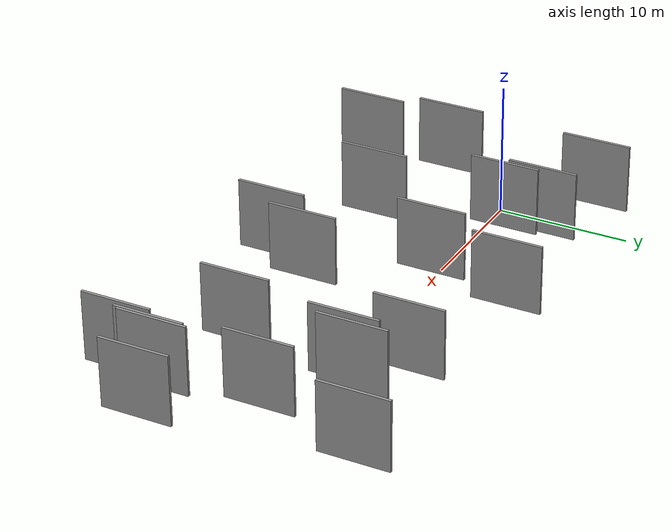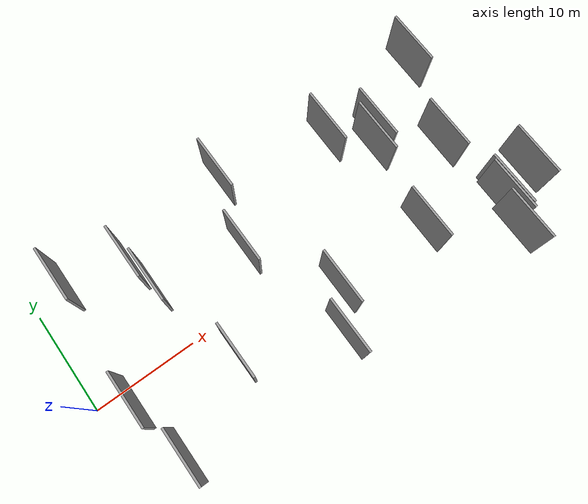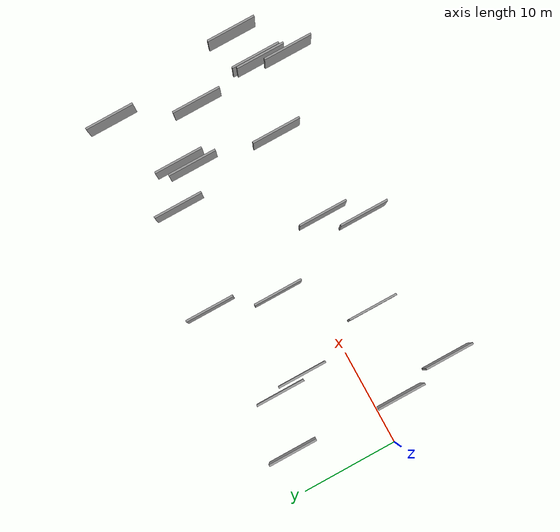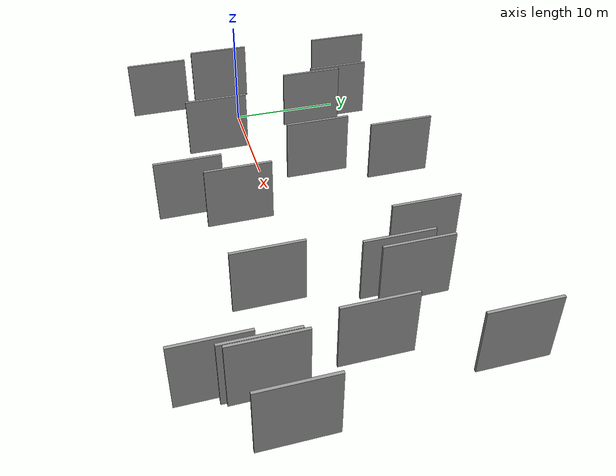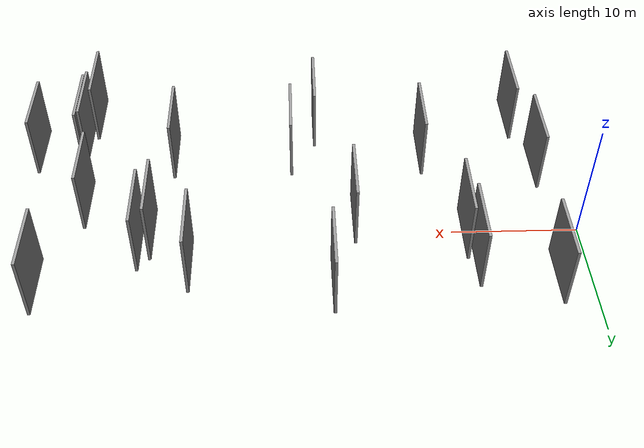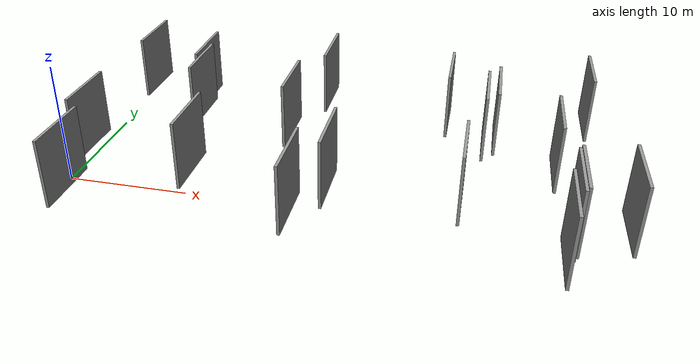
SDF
<sdf version="1.6">
 <world name="default">
  <scene>
   <sky><clouds><speed>12</speed></clouds></sky>
   <ambient>0.4 0.4 0.4 1</ambient>
   <background>0.7 0.7 0.7 1</background>
   <shadows>1</shadows>
  </scene>
  <gravity>0 0 -9.8066</gravity>
  <magnetic_field>6e-06 2.3e-05 -4.2e-05</magnetic_field>
  <physics default="0" name="default_physics" type="ode">
   <ode>
    <solver>
     <type>quick</type>
     <iters>10</iters>
     <sor>1.0</sor>
     <use_dynamic_moi_rescaling>0</use_dynamic_moi_rescaling>
    </solver>
    <constraints>
     <cfm>0</cfm>
     <erp>0.2</erp>
     <contact_max_correcting_vel>100</contact_max_correcting_vel>
     <contact_surface_layer>0.001</contact_surface_layer>
    </constraints>
   </ode>
   <max_step_size>0.004</max_step_size>
   <real_time_factor>1</real_time_factor>
   <real_time_update_rate>250</real_time_update_rate>
  </physics>
  <light name="sun" type="directional">
   <pose>0 0 10 0 0 0</pose>
   <diffuse>0.8 0.8 0.8 1</diffuse>
   <specular>0.2 0.2 0.2 1</specular>
   <attenuation>
    <range>1000</range>
    <constant>0.9</constant>
    <linear>0.01</linear>
    <quadratic>0.001</quadratic>
   </attenuation>
   <direction>-0.5 0.1 -0.9</direction>
  </light>
  <model name="grey_wall_1">
   <static>1</static>
   <pose>33.4687 5.3144 5.0 0.000000 0.000000 1.570796</pose>
   <link name="link">
    <pose>0 0 2.50 0 0 0</pose>
    <collision name="collision"><geometry><box><size>5.00 0.2 5.00</size></box></geometry></collision>
    <visual name="visual">
     <cast_shadows>0</cast_shadows>
     <geometry><box><size>5.00 0.2 5.00</size></box></geometry>
     <material>
      <script>
       <uri>model://grey_wall/materials/scripts</uri>
       <uri>model://grey_wall/materials/textures</uri>
       <name>vrc/grey_wall</name>
      </script>
     </material>
    </visual>
   </link>
  </model>
  <model name="grey_wall_2">
   <static>1</static>
   <pose>20.7372 -7.5459 5.0 0.000000 0.000000 1.570796</pose>
   <link name="link">
    <pose>0 0 2.50 0 0 0</pose>
    <collision name="collision"><geometry><box><size>5.00 0.2 5.00</size></box></geometry></collision>
    <visual name="visual">
     <cast_shadows>0</cast_shadows>
     <geometry><box><size>5.00 0.2 5.00</size></box></geometry>
     <material>
      <script>
       <uri>model://grey_wall/materials/scripts</uri>
       <uri>model://grey_wall/materials/textures</uri>
       <name>vrc/grey_wall</name>
      </script>
     </material>
    </visual>
   </link>
  </model>
  <model name="grey_wall_3">
   <static>1</static>
   <pose>4.0278 -2.2597 5.0 0.000000 0.000000 1.570796</pose>
   <link name="link">
    <pose>0 0 2.50 0 0 0</pose>
    <collision name="collision"><geometry><box><size>5.00 0.2 5.00</size></box></geometry></collision>
    <visual name="visual">
     <cast_shadows>0</cast_shadows>
     <geometry><box><size>5.00 0.2 5.00</size></box></geometry>
     <material>
      <script>
       <uri>model://grey_wall/materials/scripts</uri>
       <uri>model://grey_wall/materials/textures</uri>
       <name>vrc/grey_wall</name>
      </script>
     </material>
    </visual>
   </link>
  </model>
  <model name="grey_wall_4">
   <static>1</static>
   <pose>40.2348 8.9967 5.0 0.000000 0.000000 1.570796</pose>
   <link name="link">
    <pose>0 0 2.50 0 0 0</pose>
    <collision name="collision"><geometry><box><size>5.00 0.2 5.00</size></box></geometry></collision>
    <visual name="visual">
     <cast_shadows>0</cast_shadows>
     <geometry><box><size>5.00 0.2 5.00</size></box></geometry>
     <material>
      <script>
       <uri>model://grey_wall/materials/scripts</uri>
       <uri>model://grey_wall/materials/textures</uri>
       <name>vrc/grey_wall</name>
      </script>
     </material>
    </visual>
   </link>
  </model>
  <model name="grey_wall_5">
   <static>1</static>
   <pose>37.6660 1.1133 5.0 0.000000 0.000000 1.570796</pose>
   <link name="link">
    <pose>0 0 2.50 0 0 0</pose>
    <collision name="collision"><geometry><box><size>5.00 0.2 5.00</size></box></geometry></collision>
    <visual name="visual">
     <cast_shadows>0</cast_shadows>
     <geometry><box><size>5.00 0.2 5.00</size></box></geometry>
     <material>
      <script>
       <uri>model://grey_wall/materials/scripts</uri>
       <uri>model://grey_wall/materials/textures</uri>
       <name>vrc/grey_wall</name>
      </script>
     </material>
    </visual>
   </link>
  </model>
  <model name="grey_wall_6">
   <static>1</static>
   <pose>32.6576 4.2951 5.0 0.000000 0.000000 1.570796</pose>
   <link name="link">
    <pose>0 0 2.50 0 0 0</pose>
    <collision name="collision"><geometry><box><size>5.00 0.2 5.00</size></box></geometry></collision>
    <visual name="visual">
     <cast_shadows>0</cast_shadows>
     <geometry><box><size>5.00 0.2 5.00</size></box></geometry>
     <material>
      <script>
       <uri>model://grey_wall/materials/scripts</uri>
       <uri>model://grey_wall/materials/textures</uri>
       <name>vrc/grey_wall</name>
      </script>
     </material>
    </visual>
   </link>
  </model>
  <model name="grey_wall_7">
   <static>1</static>
   <pose>37.9338 -8.8656 5.0 0.000000 0.000000 1.570796</pose>
   <link name="link">
    <pose>0 0 2.50 0 0 0</pose>
    <collision name="collision"><geometry><box><size>5.00 0.2 5.00</size></box></geometry></collision>
    <visual name="visual">
     <cast_shadows>0</cast_shadows>
     <geometry><box><size>5.00 0.2 5.00</size></box></geometry>
     <material>
      <script>
       <uri>model://grey_wall/materials/scripts</uri>
       <uri>model://grey_wall/materials/textures</uri>
       <name>vrc/grey_wall</name>
      </script>
     </material>
    </visual>
   </link>
  </model>
  <model name="grey_wall_8">
   <static>1</static>
   <pose>10.2978 4.8408 5.0 0.000000 0.000000 1.570796</pose>
   <link name="link">
    <pose>0 0 2.50 0 0 0</pose>
    <collision name="collision"><geometry><box><size>5.00 0.2 5.00</size></box></geometry></collision>
    <visual name="visual">
     <cast_shadows>0</cast_shadows>
     <geometry><box><size>5.00 0.2 5.00</size></box></geometry>
     <material>
      <script>
       <uri>model://grey_wall/materials/scripts</uri>
       <uri>model://grey_wall/materials/textures</uri>
       <name>vrc/grey_wall</name>
      </script>
     </material>
    </visual>
   </link>
  </model>
  <model name="grey_wall_9">
   <static>1</static>
   <pose>18.1152 3.1146 5.0 0.000000 0.000000 1.570796</pose>
   <link name="link">
    <pose>0 0 2.50 0 0 0</pose>
    <collision name="collision"><geometry><box><size>5.00 0.2 5.00</size></box></geometry></collision>
    <visual name="visual">
     <cast_shadows>0</cast_shadows>
     <geometry><box><size>5.00 0.2 5.00</size></box></geometry>
     <material>
      <script>
       <uri>model://grey_wall/materials/scripts</uri>
       <uri>model://grey_wall/materials/textures</uri>
       <name>vrc/grey_wall</name>
      </script>
     </material>
    </visual>
   </link>
  </model>
  <model name="grey_wall_10">
   <static>1</static>
   <pose>38.6808 -5.8154 5.0 0.000000 0.000000 1.570796</pose>
   <link name="link">
    <pose>0 0 2.50 0 0 0</pose>
    <collision name="collision"><geometry><box><size>5.00 0.2 5.00</size></box></geometry></collision>
    <visual name="visual">
     <cast_shadows>0</cast_shadows>
     <geometry><box><size>5.00 0.2 5.00</size></box></geometry>
     <material>
      <script>
       <uri>model://grey_wall/materials/scripts</uri>
       <uri>model://grey_wall/materials/textures</uri>
       <name>vrc/grey_wall</name>
      </script>
     </material>
    </visual>
   </link>
  </model>
  <model name="grey_wall_11">
   <static>1</static>
   <pose>22.5872 -4.1713 5.0 0.000000 0.000000 1.570796</pose>
   <link name="link">
    <pose>0 0 2.50 0 0 0</pose>
    <collision name="collision"><geometry><box><size>5.00 0.2 5.00</size></box></geometry></collision>
    <visual name="visual">
     <cast_shadows>0</cast_shadows>
     <geometry><box><size>5.00 0.2 5.00</size></box></geometry>
     <material>
      <script>
       <uri>model://grey_wall/materials/scripts</uri>
       <uri>model://grey_wall/materials/textures</uri>
       <name>vrc/grey_wall</name>
      </script>
     </material>
    </visual>
   </link>
  </model>
  <model name="grey_wall_12">
   <static>1</static>
   <pose>9.7842 7.4423 5.0 0.000000 0.000000 1.570796</pose>
   <link name="link">
    <pose>0 0 2.50 0 0 0</pose>
    <collision name="collision"><geometry><box><size>5.00 0.2 5.00</size></box></geometry></collision>
    <visual name="visual">
     <cast_shadows>0</cast_shadows>
     <geometry><box><size>5.00 0.2 5.00</size></box></geometry>
     <material>
      <script>
       <uri>model://grey_wall/materials/scripts</uri>
       <uri>model://grey_wall/materials/textures</uri>
       <name>vrc/grey_wall</name>
      </script>
     </material>
    </visual>
   </link>
  </model>
  <model name="grey_wall_13">
   <static>1</static>
   <pose>12.6231 -3.9955 5.0 0.000000 0.000000 1.570796</pose>
   <link name="link">
    <pose>0 0 2.50 0 0 0</pose>
    <collision name="collision"><geometry><box><size>5.00 0.2 5.00</size></box></geometry></collision>
    <visual name="visual">
     <cast_shadows>0</cast_shadows>
     <geometry><box><size>5.00 0.2 5.00</size></box></geometry>
     <material>
      <script>
       <uri>model://grey_wall/materials/scripts</uri>
       <uri>model://grey_wall/materials/textures</uri>
       <name>vrc/grey_wall</name>
      </script>
     </material>
    </visual>
   </link>
  </model>
  <model name="grey_wall_14">
   <static>1</static>
   <pose>5.1594 -8.0126 5.0 0.000000 0.000000 1.570796</pose>
   <link name="link">
    <pose>0 0 2.50 0 0 0</pose>
    <collision name="collision"><geometry><box><size>5.00 0.2 5.00</size></box></geometry></collision>
    <visual name="visual">
     <cast_shadows>0</cast_shadows>
     <geometry><box><size>5.00 0.2 5.00</size></box></geometry>
     <material>
      <script>
       <uri>model://grey_wall/materials/scripts</uri>
       <uri>model://grey_wall/materials/textures</uri>
       <name>vrc/grey_wall</name>
      </script>
     </material>
    </visual>
   </link>
  </model>
  <model name="grey_wall_15">
   <static>1</static>
   <pose>19.8660 9.4359 5.0 0.000000 0.000000 1.570796</pose>
   <link name="link">
    <pose>0 0 2.50 0 0 0</pose>
    <collision name="collision"><geometry><box><size>5.00 0.2 5.00</size></box></geometry></collision>
    <visual name="visual">
     <cast_shadows>0</cast_shadows>
     <geometry><box><size>5.00 0.2 5.00</size></box></geometry>
     <material>
      <script>
       <uri>model://grey_wall/materials/scripts</uri>
       <uri>model://grey_wall/materials/textures</uri>
       <name>vrc/grey_wall</name>
      </script>
     </material>
    </visual>
   </link>
  </model>
  <model name="grey_wall_16">
   <static>1</static>
   <pose>31.5280 -4.0995 5.0 0.000000 0.000000 1.570796</pose>
   <link name="link">
    <pose>0 0 2.50 0 0 0</pose>
    <collision name="collision"><geometry><box><size>5.00 0.2 5.00</size></box></geometry></collision>
    <visual name="visual">
     <cast_shadows>0</cast_shadows>
     <geometry><box><size>5.00 0.2 5.00</size></box></geometry>
     <material>
      <script>
       <uri>model://grey_wall/materials/scripts</uri>
       <uri>model://grey_wall/materials/textures</uri>
       <name>vrc/grey_wall</name>
      </script>
     </material>
    </visual>
   </link>
  </model>
  <model name="grey_wall_17">
   <static>1</static>
   <pose>38.4587 -6.1877 5.0 0.000000 0.000000 1.570796</pose>
   <link name="link">
    <pose>0 0 2.50 0 0 0</pose>
    <collision name="collision"><geometry><box><size>5.00 0.2 5.00</size></box></geometry></collision>
    <visual name="visual">
     <cast_shadows>0</cast_shadows>
     <geometry><box><size>5.00 0.2 5.00</size></box></geometry>
     <material>
      <script>
       <uri>model://grey_wall/materials/scripts</uri>
       <uri>model://grey_wall/materials/textures</uri>
       <name>vrc/grey_wall</name>
      </script>
     </material>
    </visual>
   </link>
  </model>
  <model name="grey_wall_18">
   <static>1</static>
   <pose>42.0169 -5.0045 5.0 0.000000 0.000000 1.570796</pose>
   <link name="link">
    <pose>0 0 2.50 0 0 0</pose>
    <collision name="collision"><geometry><box><size>5.00 0.2 5.00</size></box></geometry></collision>
    <visual name="visual">
     <cast_shadows>0</cast_shadows>
     <geometry><box><size>5.00 0.2 5.00</size></box></geometry>
     <material>
      <script>
       <uri>model://grey_wall/materials/scripts</uri>
       <uri>model://grey_wall/materials/textures</uri>
       <name>vrc/grey_wall</name>
      </script>
     </material>
    </visual>
   </link>
  </model>
  <model name="grey_wall_19">
   <static>1</static>
   <pose>29.7975 7.3622 5.0 0.000000 0.000000 1.570796</pose>
   <link name="link">
    <pose>0 0 2.50 0 0 0</pose>
    <collision name="collision"><geometry><box><size>5.00 0.2 5.00</size></box></geometry></collision>
    <visual name="visual">
     <cast_shadows>0</cast_shadows>
     <geometry><box><size>5.00 0.2 5.00</size></box></geometry>
     <material>
      <script>
       <uri>model://grey_wall/materials/scripts</uri>
       <uri>model://grey_wall/materials/textures</uri>
       <name>vrc/grey_wall</name>
      </script>
     </material>
    </visual>
   </link>
  </model>
  <model name="grey_wall_20">
   <static>1</static>
   <pose>4.3754 9.1036 5.0 0.000000 0.000000 1.570796</pose>
   <link name="link">
    <pose>0 0 2.50 0 0 0</pose>
    <collision name="collision"><geometry><box><size>5.00 0.2 5.00</size></box></geometry></collision>
    <visual name="visual">
     <cast_shadows>0</cast_shadows>
     <geometry><box><size>5.00 0.2 5.00</size></box></geometry>
     <material>
      <script>
       <uri>model://grey_wall/materials/scripts</uri>
       <uri>model://grey_wall/materials/textures</uri>
       <name>vrc/grey_wall</name>
      </script>
     </material>
    </visual>
   </link>
  </model>
 </world>
</sdf>
